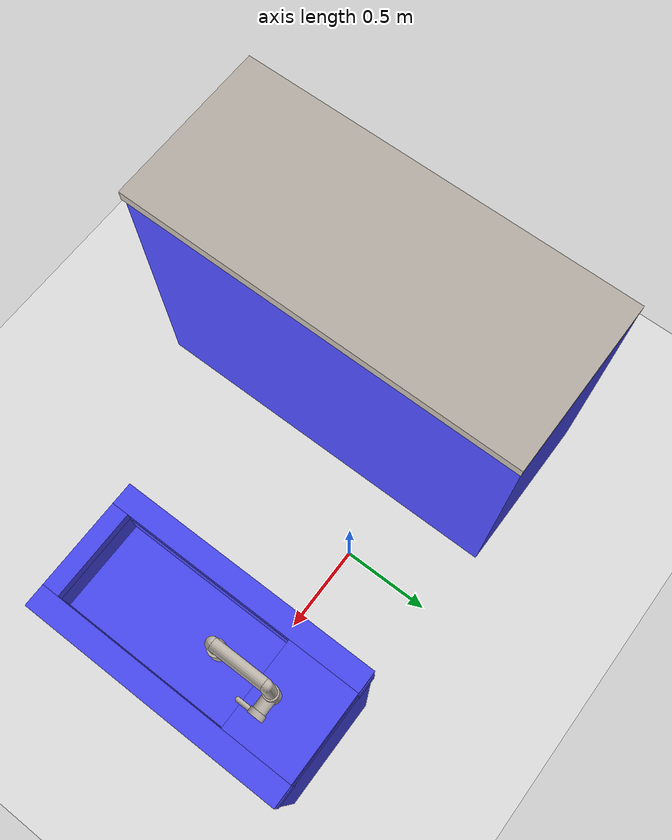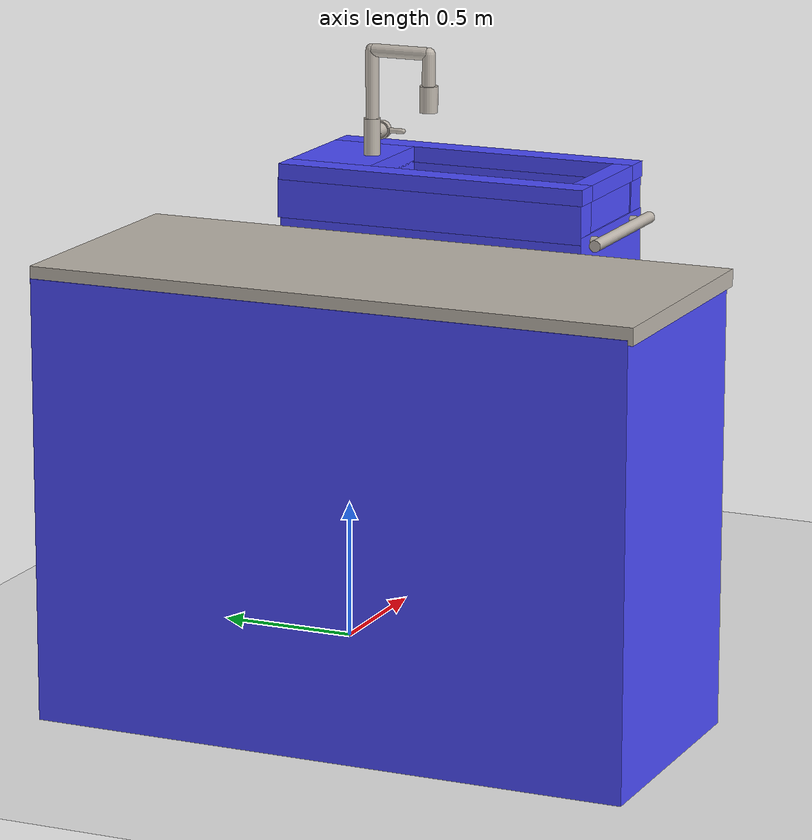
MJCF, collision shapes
<mujoco model="counters">
    <compiler angle="radian" meshdir="" texturedir=""/>
    <include file='../scenes/basic_scene.xml'/>
    <include file="../kitchen/assets/counters_asset.xml"/>

    <worldbody>

        <body>
		    <include file="../kitchen/assets/counters_chain.xml"/>
        </body>

    </worldbody>

</mujoco>

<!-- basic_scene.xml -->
<mujocoinclude>
    <asset>
        <texture name="skybox" type="skybox" builtin="gradient" rgb1=".08 .09 .10" rgb2="0 0 0"
               width="800" height="800" mark="random" markrgb=".8 .8 .8"/>

        <texture name="texplane" type="2d" height="1" width="1" file="../scenes/textures/white_marble_tile2.png" />
        <material name='MatPlane' reflectance='0.05' texture="texplane" texrepeat="4 4" texuniform="true"/>
    </asset>

    <visual>
        <quality shadowsize="4048"/>
    </visual>

    <worldbody>
        <light directional='true' diffuse='.3 .3 .3' specular='0.3 0.3 0.3' pos='-1 -1 1' dir='1 1 -1'/>
        <light directional='true' diffuse='.3 .3 .3' specular='0.3 0.3 0.3' pos='1 -1 1' dir='-1 1 -1'/>
        <light directional='true' diffuse='.3 .3 .3' specular='0.3 0.3 0.3' pos='0 1 1' dir='0 -1 -1'/>
        <geom name='floor' pos='0 0 0' size='5 5 .1' conaffinity='1' contype='1' type='plane' material="MatPlane" condim='3'/>
        <site name='xaxis' pos='.5 0 0' size='.005 .5' type='capsule' rgba='1 0 0 .25' euler='0 1.57 0' group='3'/>
        <site name='yaxis' pos='0 .5 0' size='.005 .5' type='capsule' rgba='0 1 0 .25' euler='1.57 0 0' group='3'/>
    </worldbody>
</mujocoinclude>

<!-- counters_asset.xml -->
<mujocoinclude>
    <compiler inertiafromgeom="auto" inertiagrouprange="4 4" angle="radian"/>

    <asset>
        <mesh file="../kitchen/meshes/cabinetdrawer.stl" name="cabinetdrawer"/>
        <mesh file="../kitchen/meshes/cabinethandle.stl" name="cabinethandle"/>
        <mesh file="../kitchen/meshes/cabinetbase.stl" name="cabinetbase"/>
        <mesh file="../kitchen/meshes/countertop.stl" name="countertop"/>
        <mesh file="../kitchen/meshes/faucet.stl" name="faucet"/>

        <texture name="T_counter_metal" type="cube" height="1" width="1" file="../kitchen/textures/metal1.png" />
        <texture name="T_counter_marble" type="cube" height="1" width="1" file="../kitchen/textures/marble1.png" />

        <material name="counter_metal" rgba="1 1 1 1" texture="T_counter_metal" texrepeat="3 3" reflectance=".5" shininess="1" texuniform="false" />
        <material name="counter_marble"  texture="T_counter_marble" texrepeat="1 1" reflectance=".2" shininess="1" texuniform="false" />
        <material name="counter_black" rgba=".2 .2 .2 1" reflectance="1" shininess="1"  />
        <material name="counter_blue" rgba=".46 .5 .6 1" reflectance="1" shininess="1"  />
        <material name="counter_collision_blue" rgba="0.3 0.3 1.0 0.5" shininess="0" specular="0" />

    </asset>

    <default>
        <default class="counters">
            <joint damping="2" frictionloss="2" armature=".01" limited="true"/>
            <geom conaffinity="0" contype="0" group="1" material="counter_metal" type="mesh"/>
            <default class="counter_collision">
                <geom conaffinity="1" condim="3" contype="0" group="4" margin="0.001" material="counter_collision_blue"/>
            </default>
        </default>
    </default>

</mujocoinclude>

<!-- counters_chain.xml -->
<mujocoinclude>
    <body name="counters" childclass="counters">
        <geom material="counter_blue" mesh="cabinetbase"/>
        <geom material="counter_marble" mesh="countertop"/>
        <geom material="counter_marble" pos="-0.855 -0.508 1.57" size="0.463 1.08 0.03" type="box"/>
        <geom mesh="faucet" pos="0.904 -0.172 1.511"/>
        <geom pos="0.9 0.085 1.83" size="0.035 0.05" type="cylinder"/>
        <geom pos="0.9 0.085 1.92" size="0.025 0.08" type="capsule"/>
        <geom euler="1.57 0 0" pos="0.9 0.2 2" size="0.025 0.11" type="capsule"/>
        <geom pos="0.9 0.317 1.8" size="0.025 0.2" type="capsule"/>
        <geom pos="0.9 0.317 1.67" size="0.032 0.07" type="cylinder"/>
        <geom pos="0.947 0.318 1.68" euler="0 1.57 0" size="0.029 0.03" type="cylinder"/>
        <geom pos="0.99 0.318 1.68" euler="0 1.57 0" size="0.035 0.013 " type="cylinder"/>
        <geom euler="1.57 0 0" pos="0.99 0.26 1.68" size="0.01 0.03" type="capsule"/>
        <geom euler="0 1.57 0" pos="0.909 -0.695 1.39" size="0.022 0.28" type="cylinder"/>
        <geom euler="1.57 0 0" pos="0.71 -0.665 1.39" size="0.018 0.03" type="cylinder"/>
        <geom euler="1.57 0 0" pos="1.108 -0.665 1.39" size="0.018 0.03" type="cylinder"/>
        <geom euler="0 1.57 0" pos="0.909 -0.695 1.14" size="0.022 0.28" type="cylinder"/>
        <geom euler="1.57 0 0" pos="0.71 -0.665 1.14" size="0.018 0.03" type="cylinder"/>
        <geom euler="1.57 0 0" pos="1.108 -0.665 1.14" size="0.018 0.03" type="cylinder"/>

        <geom class="counter_collision" euler="0 1.57 0" pos="0.909 -0.695 1.39" size="0.022 0.28" type="cylinder" mass=".1"/>
        <geom class="counter_collision" euler="1.57 0 0" pos="0.71 -0.665 1.39" size="0.018 0.03" type="cylinder" mass=".02"/>
        <geom class="counter_collision" euler="1.57 0 0" pos="1.108 -0.665 1.39" size="0.018 0.03" type="cylinder" mass=".02"/>
        <geom class="counter_collision" euler="0 1.57 0" pos="0.909 -0.695 1.14" size="0.022 0.28" type="cylinder" mass=".1"/>
        <geom class="counter_collision" euler="1.57 0 0" pos="0.71 -0.665 1.14" size="0.018 0.03" type="cylinder" mass=".02"/>
        <geom class="counter_collision" euler="1.57 0 0" pos="1.108 -0.665 1.14" size="0.018 0.03" type="cylinder" mass=".02"/>
        <geom class="counter_collision" pos="-0.86 -0.5 0.78" size="0.46 1.07 0.777" type="box" mass="5"/>
        <geom class="counter_collision" pos="0.907 -0.045 0.71" size="0.304 0.606 0.71" type="box" mass="3"/>
        <geom class="counter_collision" pos="-0.855 -0.508 1.57" size="0.463 1.08 0.03" type="box" mass=".5"/>
        <geom class="counter_collision" pos="1.159 -0.045 1.57" size="0.051 0.611 0.03" type="box" mass=".2"/>
        <geom class="counter_collision" pos="0.649 -0.045 1.57" size="0.051 0.611 0.03" type="box" mass=".2"/>
        <geom class="counter_collision" pos="0.904 0.4 1.57" size="0.204 0.165 0.03" type="box" mass=".2"/>
        <geom class="counter_collision" pos="0.904 -0.617 1.57" size="0.204 0.039 0.03" type="box" mass=".2"/>
        <geom class="counter_collision" pos="1.158 -0.04 1.47" size="0.05 0.61 0.076" type="box" mass=".2"/>
        <geom class="counter_collision" pos="0.652 -0.04 1.47" size="0.05 0.61 0.076" type="box" mass=".2"/>
        <geom class="counter_collision" pos="0.904 0.401 1.47" size="0.204 0.166 0.076" type="box" mass=".2"/>
        <geom class="counter_collision" pos="0.904 -0.611 1.47" size="0.206 0.034 0.076" type="box" mass=".2"/>
        <geom class="counter_collision" pos="0.9 0.085 1.83" size="0.035 0.05" type="cylinder" mass=".02"/>
        <geom class="counter_collision" pos="0.9 0.085 1.92" size="0.025 0.08" type="capsule" mass=".02"/>
        <geom class="counter_collision" euler="1.57 0 0" pos="0.9 0.2 2" size="0.025 0.11" type="capsule" mass=".02"/>
        <geom class="counter_collision" pos="0.9 0.317 1.8" size="0.025 0.2" type="capsule" mass=".02"/>
        <geom class="counter_collision" pos="0.9 0.317 1.67" size="0.032 0.07" type="cylinder" mass=".02"/>
        <geom class="counter_collision" pos="0.947 0.318 1.68" euler="0 1.57 0" size="0.029 0.03" type="cylinder" mass=".02"/>
        <geom class="counter_collision" pos="0.99 0.318 1.68" euler="0 1.57 0" size="0.035 0.013 " type="cylinder" mass=".02"/>
        <geom class="counter_collision" euler="1.57 0 0" pos="0.99 0.26 1.68" size="0.01 0.03" type="capsule" mass=".02"/>
    </body>
</mujocoinclude>
